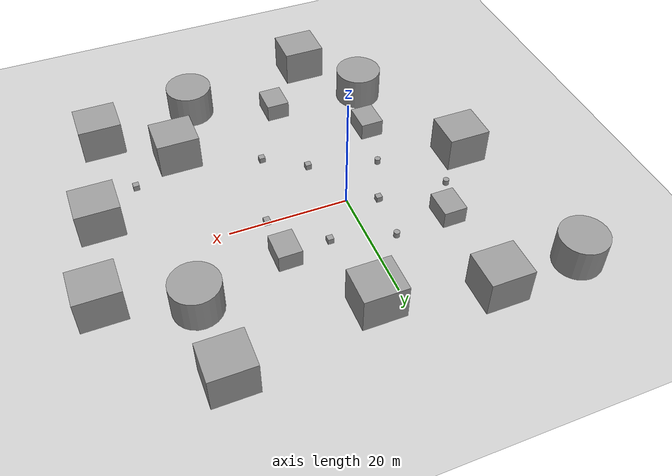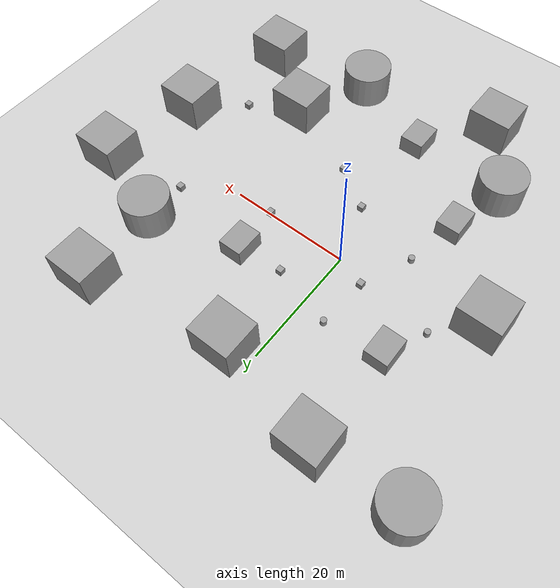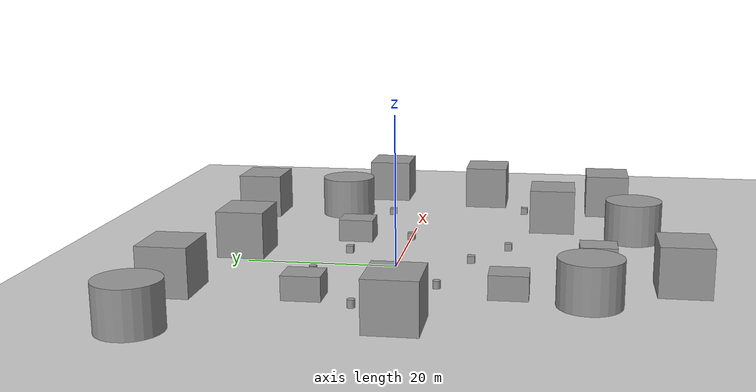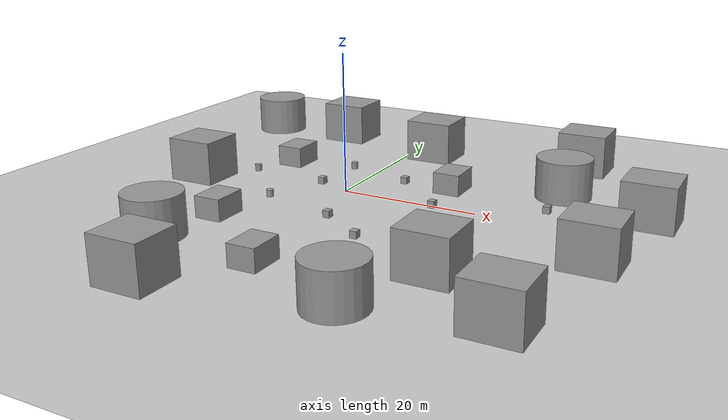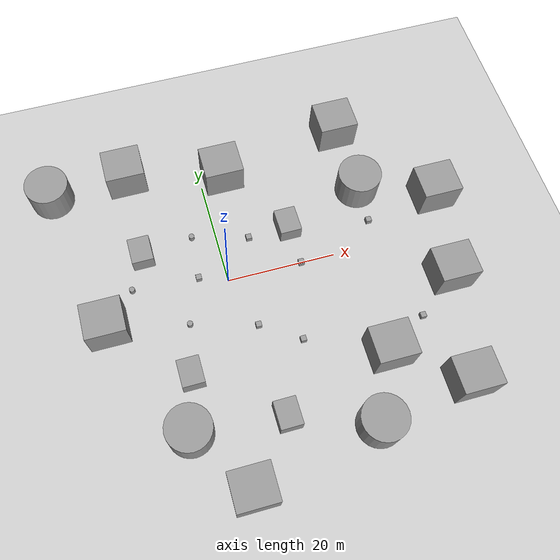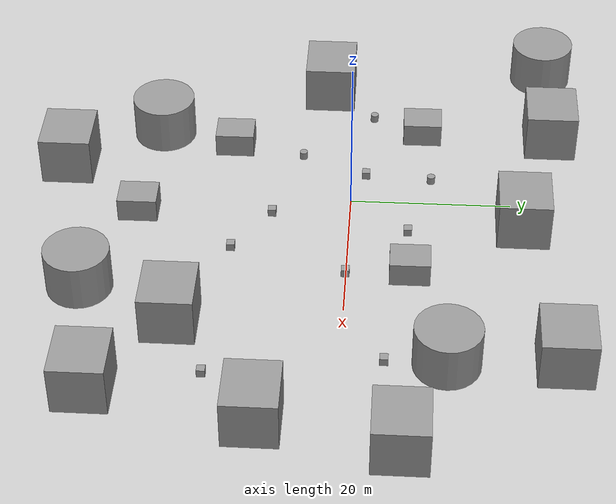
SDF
<sdf version="1.6">
 <world name="default">
  <light name="sun" type="directional">
   <pose>0 0 10 0 -0 0</pose>
   <diffuse>0.8 0.8 0.8 1</diffuse>
   <specular>0.2 0.2 0.2 1</specular>
   <attenuation>
    <range>1000</range>
    <constant>0.9</constant>
    <linear>0.01</linear>
    <quadratic>0.001</quadratic>
   </attenuation>
   <direction>-0.5 0.1 -0.9</direction>
  </light>
  <model name="ground_plane">
   <static>1</static>
   <link name="link">
    <collision name="collision">
     <geometry><plane><normal>0 0 1</normal><size>100 100</size></plane></geometry>
     <surface><friction><ode><mu>100</mu><mu2>50</mu2></ode></friction></surface>
    </collision>
    <visual name="visual">
     <cast_shadows>0</cast_shadows>
     <geometry><plane><normal>0 0 1</normal><size>100 100</size></plane></geometry>
     <material>
      <script><uri>file://media/materials/scripts/gazebo.material</uri><name>Gazebo/Grey</name></script>
     </material>
    </visual>
   </link>
  </model>
  <gravity>0 0 -9.8</gravity>
  <magnetic_field>6e-06 2.3e-05 -4.2e-05</magnetic_field>
  <atmosphere type="adiabatic"/>
  <physics name="default_physics" default="0" type="ode">
   <max_step_size>0.001</max_step_size>
   <real_time_factor>1</real_time_factor>
   <real_time_update_rate>1000</real_time_update_rate>
  </physics>
  <scene><ambient>0.4 0.4 0.4 1</ambient><background>0.7 0.7 0.7 1</background><shadows>1</shadows></scene>
  <audio><device>default</device></audio>
  <spherical_coordinates>
   <surface_model>EARTH_WGS84</surface_model>
   <latitude_deg>0</latitude_deg>
   <longitude_deg>0</longitude_deg>
   <elevation>0</elevation>
   <heading_deg>0</heading_deg>
  </spherical_coordinates>
  <model name="unit_box">
   <pose>2.99998 -9.69812 0.5 0 0 -5e-06</pose>
   <link name="link">
    <inertial>
     <mass>1</mass>
     <inertia>
      <ixx>0.166667</ixx>
      <ixy>0</ixy>
      <ixz>0</ixz>
      <iyy>0.166667</iyy>
      <iyz>0</iyz>
      <izz>0.166667</izz>
     </inertia>
    </inertial>
    <collision name="collision"><geometry><box><size>1 1 1</size></box></geometry></collision>
    <visual name="visual">
     <geometry><box><size>1 1 1</size></box></geometry>
     <material>
      <script><name>Gazebo/Grey</name><uri>file://media/materials/scripts/gazebo.material</uri></script>
     </material>
    </visual>
   </link>
  </model>
  <model name="unit_box_0">
   <pose>-4.99198 1.77226 0.499995 0 1e-05 0</pose>
   <link name="link">
    <inertial>
     <mass>1</mass>
     <inertia>
      <ixx>0.166667</ixx>
      <ixy>0</ixy>
      <ixz>0</ixz>
      <iyy>0.166667</iyy>
      <iyz>0</iyz>
      <izz>0.166667</izz>
     </inertia>
    </inertial>
    <collision name="collision"><geometry><box><size>1 1 1</size></box></geometry></collision>
    <visual name="visual">
     <geometry><box><size>1 1 1</size></box></geometry>
     <material>
      <script><name>Gazebo/Grey</name><uri>file://media/materials/scripts/gazebo.material</uri></script>
     </material>
    </visual>
   </link>
  </model>
  <model name="unit_box_1">
   <pose>5.82102 7.27449 0.499995 0 1e-05 0</pose>
   <link name="link">
    <inertial>
     <mass>1</mass>
     <inertia>
      <ixx>0.166667</ixx>
      <ixy>0</ixy>
      <ixz>0</ixz>
      <iyy>0.166667</iyy>
      <iyz>0</iyz>
      <izz>0.166667</izz>
     </inertia>
    </inertial>
    <collision name="collision"><geometry><box><size>1 1 1</size></box></geometry></collision>
    <visual name="visual">
     <geometry><box><size>1 1 1</size></box></geometry>
     <material>
      <script><name>Gazebo/Grey</name><uri>file://media/materials/scripts/gazebo.material</uri></script>
     </material>
    </visual>
   </link>
  </model>
  <model name="unit_cylinder">
   <pose>-4.35398 10.0664 0.499993 -3e-06 2e-06 0</pose>
   <link name="link">
    <inertial>
     <mass>1</mass>
     <inertia><ixx>0.145833</ixx><ixy>0</ixy><ixz>0</ixz><iyy>0.145833</iyy><iyz>0</iyz><izz>0.125</izz></inertia>
    </inertial>
    <collision name="collision">
     <geometry><cylinder><radius>0.5</radius><length>1</length></cylinder></geometry>
    </collision>
    <visual name="visual">
     <geometry><cylinder><radius>0.5</radius><length>1</length></cylinder></geometry>
     <material>
      <script><name>Gazebo/Grey</name><uri>file://media/materials/scripts/gazebo.material</uri></script>
     </material>
    </visual>
   </link>
  </model>
  <model name="unit_cylinder_0">
   <pose>-8.54331 -6.45791 0.499993 -3e-06 2e-06 0</pose>
   <link name="link">
    <inertial>
     <mass>1</mass>
     <inertia><ixx>0.145833</ixx><ixy>0</ixy><ixz>0</ixz><iyy>0.145833</iyy><iyz>0</iyz><izz>0.125</izz></inertia>
    </inertial>
    <collision name="collision">
     <geometry><cylinder><radius>0.5</radius><length>1</length></cylinder></geometry>
    </collision>
    <visual name="visual">
     <geometry><cylinder><radius>0.5</radius><length>1</length></cylinder></geometry>
     <material>
      <script><name>Gazebo/Grey</name><uri>file://media/materials/scripts/gazebo.material</uri></script>
     </material>
    </visual>
   </link>
  </model>
  <model name="unit_cylinder_1">
   <pose>-17.0483 2.49024 0.499993 -3e-06 2e-06 0</pose>
   <link name="link">
    <inertial>
     <mass>1</mass>
     <inertia><ixx>0.145833</ixx><ixy>0</ixy><ixz>0</ixz><iyy>0.145833</iyy><iyz>0</iyz><izz>0.125</izz></inertia>
    </inertial>
    <collision name="collision">
     <geometry><cylinder><radius>0.5</radius><length>1</length></cylinder></geometry>
    </collision>
    <visual name="visual">
     <geometry><cylinder><radius>0.5</radius><length>1</length></cylinder></geometry>
     <material>
      <script><name>Gazebo/Grey</name><uri>file://media/materials/scripts/gazebo.material</uri></script>
     </material>
    </visual>
   </link>
  </model>
  <model name="unit_box_2_clone">
   <pose>-10.4111 -15.4302 1.54268 0 -1e-06 0.006888</pose>
   <link name="link">
    <inertial>
     <mass>1</mass>
     <inertia>
      <ixx>0.166667</ixx>
      <ixy>0</ixy>
      <ixz>0</ixz>
      <iyy>0.166667</iyy>
      <iyz>0</iyz>
      <izz>0.166667</izz>
     </inertia>
    </inertial>
    <collision name="collision"><geometry><box><size>3.93004 4.88437 3.08535</size></box></geometry></collision>
    <visual name="visual">
     <geometry><box><size>3.93004 4.88437 3.08535</size></box></geometry>
     <material>
      <script><name>Gazebo/Grey</name><uri>file://media/materials/scripts/gazebo.material</uri></script>
     </material>
    </visual>
   </link>
  </model>
  <model name="unit_box_2_clone_0">
   <pose>-13.9418 8.84197 1.54268 0 -1e-06 0.006888</pose>
   <link name="link">
    <inertial>
     <mass>1</mass>
     <inertia>
      <ixx>0.166667</ixx>
      <ixy>0</ixy>
      <ixz>0</ixz>
      <iyy>0.166667</iyy>
      <iyz>0</iyz>
      <izz>0.166667</izz>
     </inertia>
    </inertial>
    <collision name="collision"><geometry><box><size>3.93004 4.88437 3.08535</size></box></geometry></collision>
    <visual name="visual">
     <geometry><box><size>3.93004 4.88437 3.08535</size></box></geometry>
     <material>
      <script><name>Gazebo/Grey</name><uri>file://media/materials/scripts/gazebo.material</uri></script>
     </material>
    </visual>
   </link>
  </model>
  <model name="unit_box_2_clone_1">
   <pose>3.28999 -26.3429 1.54268 0 -1e-06 0.006888</pose>
   <link name="link">
    <inertial>
     <mass>1</mass>
     <inertia>
      <ixx>0.166667</ixx>
      <ixy>0</ixy>
      <ixz>0</ixz>
      <iyy>0.166667</iyy>
      <iyz>0</iyz>
      <izz>0.166667</izz>
     </inertia>
    </inertial>
    <collision name="collision"><geometry><box><size>3.93004 4.88437 3.08535</size></box></geometry></collision>
    <visual name="visual">
     <geometry><box><size>3.93004 4.88437 3.08535</size></box></geometry>
     <material>
      <script><name>Gazebo/Grey</name><uri>file://media/materials/scripts/gazebo.material</uri></script>
     </material>
    </visual>
   </link>
  </model>
  <model name="unit_box_2_clone_2">
   <pose>13.308 7.61794 1.54268 0 -1e-06 0.006888</pose>
   <link name="link">
    <inertial>
     <mass>1</mass>
     <inertia>
      <ixx>0.166667</ixx>
      <ixy>0</ixy>
      <ixz>0</ixz>
      <iyy>0.166667</iyy>
      <iyz>0</iyz>
      <izz>0.166667</izz>
     </inertia>
    </inertial>
    <collision name="collision"><geometry><box><size>3.93004 4.88437 3.08535</size></box></geometry></collision>
    <visual name="visual">
     <geometry><box><size>3.93004 4.88437 3.08535</size></box></geometry>
     <material>
      <script><name>Gazebo/Grey</name><uri>file://media/materials/scripts/gazebo.material</uri></script>
     </material>
    </visual>
   </link>
  </model>
  <model name="unit_box_2_clone_3">
   <pose>-22.496 -3.5392 3.16509 0 -1e-06 -0.00039</pose>
   <link name="link">
    <inertial>
     <mass>1</mass>
     <inertia>
      <ixx>0.166667</ixx>
      <ixy>0</ixy>
      <ixz>0</ixz>
      <iyy>0.166667</iyy>
      <iyz>0</iyz>
      <izz>0.166667</izz>
     </inertia>
    </inertial>
    <collision name="collision"><geometry><box><size>7.13047 6.46568 6.33019</size></box></geometry></collision>
    <visual name="visual">
     <geometry><box><size>7.13047 6.46568 6.33019</size></box></geometry>
     <material>
      <script><name>Gazebo/Grey</name><uri>file://media/materials/scripts/gazebo.material</uri></script>
     </material>
    </visual>
   </link>
  </model>
  <model name="unit_box_2_clone_4">
   <pose>4.29268 21.3889 3.16509 0 -1e-06 -0.00039</pose>
   <link name="link">
    <inertial>
     <mass>1</mass>
     <inertia>
      <ixx>0.166667</ixx>
      <ixy>0</ixy>
      <ixz>0</ixz>
      <iyy>0.166667</iyy>
      <iyz>0</iyz>
      <izz>0.166667</izz>
     </inertia>
    </inertial>
    <collision name="collision"><geometry><box><size>7.13047 6.46568 6.33019</size></box></geometry></collision>
    <visual name="visual">
     <geometry><box><size>7.13047 6.46568 6.33019</size></box></geometry>
     <material>
      <script><name>Gazebo/Grey</name><uri>file://media/materials/scripts/gazebo.material</uri></script>
     </material>
    </visual>
   </link>
  </model>
  <model name="unit_box_2_clone_5">
   <pose>23.1495 -20.052 3.16509 0 -1e-06 -0.00039</pose>
   <link name="link">
    <inertial>
     <mass>1</mass>
     <inertia>
      <ixx>0.166667</ixx>
      <ixy>0</ixy>
      <ixz>0</ixz>
      <iyy>0.166667</iyy>
      <iyz>0</iyz>
      <izz>0.166667</izz>
     </inertia>
    </inertial>
    <collision name="collision"><geometry><box><size>7.13047 6.46568 6.33019</size></box></geometry></collision>
    <visual name="visual">
     <geometry><box><size>7.13047 6.46568 6.33019</size></box></geometry>
     <material>
      <script><name>Gazebo/Grey</name><uri>file://media/materials/scripts/gazebo.material</uri></script>
     </material>
    </visual>
   </link>
  </model>
  <model name="unit_cylinder_2">
   <pose>17.552 -31.5845 2.92198 1e-06 0 -9e-05</pose>
   <link name="link">
    <inertial>
     <mass>1</mass>
     <inertia><ixx>0.145833</ixx><ixy>0</ixy><ixz>0</ixz><iyy>0.145833</iyy><iyz>0</iyz><izz>0.125</izz></inertia>
    </inertial>
    <collision name="collision">
     <geometry><cylinder><radius>3.97159</radius><length>5.84396</length></cylinder></geometry>
    </collision>
    <visual name="visual">
     <geometry><cylinder><radius>3.97159</radius><length>5.84396</length></cylinder></geometry>
     <material>
      <script><name>Gazebo/Grey</name><uri>file://media/materials/scripts/gazebo.material</uri></script>
     </material>
    </visual>
   </link>
  </model>
  <model name="unit_cylinder_2_clone">
   <pose>-12.7951 -24.9645 2.92198 0 0 -9.7e-05</pose>
   <link name="link">
    <inertial>
     <mass>1</mass>
     <inertia><ixx>0.145833</ixx><ixy>0</ixy><ixz>0</ixz><iyy>0.145833</iyy><iyz>0</iyz><izz>0.125</izz></inertia>
    </inertial>
    <collision name="collision">
     <geometry><cylinder><radius>3.97159</radius><length>5.84397</length></cylinder></geometry>
    </collision>
    <visual name="visual">
     <geometry><cylinder><radius>3.97159</radius><length>5.84397</length></cylinder></geometry>
     <material>
      <script><name>Gazebo/Grey</name><uri>file://media/materials/scripts/gazebo.material</uri></script>
     </material>
    </visual>
   </link>
  </model>
  <model name="unit_cylinder_2_clone_0">
   <pose>-27.8323 24.834 2.92198 0 0 -9.7e-05</pose>
   <link name="link">
    <inertial>
     <mass>1</mass>
     <inertia><ixx>0.145833</ixx><ixy>0</ixy><ixz>0</ixz><iyy>0.145833</iyy><iyz>0</iyz><izz>0.125</izz></inertia>
    </inertial>
    <collision name="collision">
     <geometry><cylinder><radius>3.97159</radius><length>5.84397</length></cylinder></geometry>
    </collision>
    <visual name="visual">
     <geometry><cylinder><radius>3.97159</radius><length>5.84397</length></cylinder></geometry>
     <material>
      <script><name>Gazebo/Grey</name><uri>file://media/materials/scripts/gazebo.material</uri></script>
     </material>
    </visual>
   </link>
  </model>
  <model name="unit_cylinder_2_clone_1">
   <pose>28.3724 12.0602 2.92198 0 0 -9.7e-05</pose>
   <link name="link">
    <inertial>
     <mass>1</mass>
     <inertia><ixx>0.145833</ixx><ixy>0</ixy><ixz>0</ixz><iyy>0.145833</iyy><iyz>0</iyz><izz>0.125</izz></inertia>
    </inertial>
    <collision name="collision">
     <geometry><cylinder><radius>3.97159</radius><length>5.84397</length></cylinder></geometry>
    </collision>
    <visual name="visual">
     <geometry><cylinder><radius>3.97159</radius><length>5.84397</length></cylinder></geometry>
     <material>
      <script><name>Gazebo/Grey</name><uri>file://media/materials/scripts/gazebo.material</uri></script>
     </material>
    </visual>
   </link>
  </model>
  <model name="unit_box_2_clone_5_clone">
   <pose>38.5243 -9.20646 3.16509 -0 -1e-06 -0.000322</pose>
   <link name="link">
    <inertial>
     <mass>1</mass>
     <inertia>
      <ixx>0.166667</ixx>
      <ixy>0</ixy>
      <ixz>0</ixz>
      <iyy>0.166667</iyy>
      <iyz>0</iyz>
      <izz>0.166667</izz>
     </inertia>
    </inertial>
    <collision name="collision"><geometry><box><size>7.13047 6.46568 6.33019</size></box></geometry></collision>
    <visual name="visual">
     <geometry><box><size>7.13047 6.46568 6.33019</size></box></geometry>
     <material>
      <script><name>Gazebo/Grey</name><uri>file://media/materials/scripts/gazebo.material</uri></script>
     </material>
    </visual>
   </link>
  </model>
  <model name="unit_box_2_clone_5_clone_0">
   <pose>41.6015 7.05091 3.16509 0 -1e-06 -0.000204</pose>
   <link name="link">
    <inertial>
     <mass>1</mass>
     <inertia>
      <ixx>0.166667</ixx>
      <ixy>0</ixy>
      <ixz>0</ixz>
      <iyy>0.166667</iyy>
      <iyz>0</iyz>
      <izz>0.166667</izz>
     </inertia>
    </inertial>
    <collision name="collision"><geometry><box><size>7.13047 6.46568 6.33019</size></box></geometry></collision>
    <visual name="visual">
     <geometry><box><size>7.13047 6.46568 6.33019</size></box></geometry>
     <material>
      <script><name>Gazebo/Grey</name><uri>file://media/materials/scripts/gazebo.material</uri></script>
     </material>
    </visual>
   </link>
  </model>
  <model name="unit_box_2_clone_5_clone_1">
   <pose>34.4969 -28.3741 3.16509 0 1e-06 -0.00038</pose>
   <link name="link">
    <inertial>
     <mass>1</mass>
     <inertia>
      <ixx>0.166667</ixx>
      <ixy>0</ixy>
      <ixz>0</ixz>
      <iyy>0.166667</iyy>
      <iyz>0</iyz>
      <izz>0.166667</izz>
     </inertia>
    </inertial>
    <collision name="collision"><geometry><box><size>7.13047 6.46568 6.33019</size></box></geometry></collision>
    <visual name="visual">
     <geometry><box><size>7.13047 6.46568 6.33019</size></box></geometry>
     <material>
      <script><name>Gazebo/Grey</name><uri>file://media/materials/scripts/gazebo.material</uri></script>
     </material>
    </visual>
   </link>
  </model>
  <model name="unit_box_2_clone_5_clone_2">
   <pose>-5.29989 -36.2773 3.16509 -0 -1e-06 8e-06</pose>
   <link name="link">
    <inertial>
     <mass>1</mass>
     <inertia>
      <ixx>0.166667</ixx>
      <ixy>0</ixy>
      <ixz>0</ixz>
      <iyy>0.166667</iyy>
      <iyz>0</iyz>
      <izz>0.166667</izz>
     </inertia>
    </inertial>
    <collision name="collision"><geometry><box><size>7.13047 6.46568 6.33019</size></box></geometry></collision>
    <visual name="visual">
     <geometry><box><size>7.13047 6.46568 6.33019</size></box></geometry>
     <material>
      <script><name>Gazebo/Grey</name><uri>file://media/materials/scripts/gazebo.material</uri></script>
     </material>
    </visual>
   </link>
  </model>
  <model name="unit_box_2_clone_5_clone_3">
   <pose>-13.5113 25.4024 3.16509 -0 -1e-06 -0.000623</pose>
   <link name="link">
    <inertial>
     <mass>1</mass>
     <inertia>
      <ixx>0.166667</ixx>
      <ixy>0</ixy>
      <ixz>0</ixz>
      <iyy>0.166667</iyy>
      <iyz>0</iyz>
      <izz>0.166667</izz>
     </inertia>
    </inertial>
    <collision name="collision"><geometry><box><size>7.13047 6.46568 6.33019</size></box></geometry></collision>
    <visual name="visual">
     <geometry><box><size>7.13047 6.46568 6.33019</size></box></geometry>
     <material>
      <script><name>Gazebo/Grey</name><uri>file://media/materials/scripts/gazebo.material</uri></script>
     </material>
    </visual>
   </link>
  </model>
  <model name="unit_box_2_clone_5_clone_4">
   <pose>27.7826 25.4091 3.16509 -0 1e-06 0.000248</pose>
   <link name="link">
    <inertial>
     <mass>1</mass>
     <inertia>
      <ixx>0.166667</ixx>
      <ixy>0</ixy>
      <ixz>0</ixz>
      <iyy>0.166667</iyy>
      <iyz>0</iyz>
      <izz>0.166667</izz>
     </inertia>
    </inertial>
    <collision name="collision"><geometry><box><size>7.13047 6.46568 6.33019</size></box></geometry></collision>
    <visual name="visual">
     <geometry><box><size>7.13047 6.46568 6.33019</size></box></geometry>
     <material>
      <script><name>Gazebo/Grey</name><uri>file://media/materials/scripts/gazebo.material</uri></script>
     </material>
    </visual>
   </link>
  </model>
  <model name="unit_box_clone">
   <pose>9.76822 -14.2563 0.499995 -1e-05 -0 0</pose>
   <link name="link">
    <inertial>
     <mass>1</mass>
     <inertia>
      <ixx>0.166667</ixx>
      <ixy>0</ixy>
      <ixz>0</ixz>
      <iyy>0.166667</iyy>
      <iyz>0</iyz>
      <izz>0.166667</izz>
     </inertia>
    </inertial>
    <collision name="collision"><geometry><box><size>1 1 1</size></box></geometry></collision>
    <visual name="visual">
     <geometry><box><size>1 1 1</size></box></geometry>
     <material>
      <script><name>Gazebo/Grey</name><uri>file://media/materials/scripts/gazebo.material</uri></script>
     </material>
    </visual>
   </link>
  </model>
  <model name="unit_box_clone_0">
   <pose>31.3415 -15.5854 0.499995 1e-05 -0 0</pose>
   <link name="link">
    <inertial>
     <mass>1</mass>
     <inertia>
      <ixx>0.166667</ixx>
      <ixy>0</ixy>
      <ixz>0</ixz>
      <iyy>0.166667</iyy>
      <iyz>0</iyz>
      <izz>0.166667</izz>
     </inertia>
    </inertial>
    <collision name="collision"><geometry><box><size>1 1 1</size></box></geometry></collision>
    <visual name="visual">
     <geometry><box><size>1 1 1</size></box></geometry>
     <material>
      <script><name>Gazebo/Grey</name><uri>file://media/materials/scripts/gazebo.material</uri></script>
     </material>
    </visual>
   </link>
  </model>
  <model name="unit_box_clone_1">
   <pose>28.3693 4.92471 0.499995 0 1e-05 0</pose>
   <link name="link">
    <inertial>
     <mass>1</mass>
     <inertia>
      <ixx>0.166667</ixx>
      <ixy>0</ixy>
      <ixz>0</ixz>
      <iyy>0.166667</iyy>
      <iyz>0</iyz>
      <izz>0.166667</izz>
     </inertia>
    </inertial>
    <collision name="collision"><geometry><box><size>1 1 1</size></box></geometry></collision>
    <visual name="visual">
     <geometry><box><size>1 1 1</size></box></geometry>
     <material>
      <script><name>Gazebo/Grey</name><uri>file://media/materials/scripts/gazebo.material</uri></script>
     </material>
    </visual>
   </link>
  </model>
  <model name="unit_box_clone_2">
   <pose>13.7163 -0.094858 0.499995 -1e-05 -0 5e-06</pose>
   <link name="link">
    <inertial>
     <mass>1</mass>
     <inertia>
      <ixx>0.166667</ixx>
      <ixy>0</ixy>
      <ixz>0</ixz>
      <iyy>0.166667</iyy>
      <iyz>0</iyz>
      <izz>0.166667</izz>
     </inertia>
    </inertial>
    <collision name="collision"><geometry><box><size>1 1 1</size></box></geometry></collision>
    <visual name="visual">
     <geometry><box><size>1 1 1</size></box></geometry>
     <material>
      <script><name>Gazebo/Grey</name><uri>file://media/materials/scripts/gazebo.material</uri></script>
     </material>
    </visual>
   </link>
  </model>
 </world>
</sdf>
